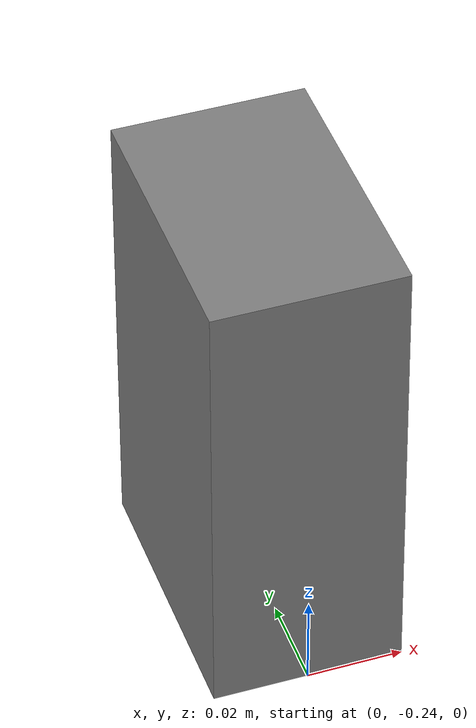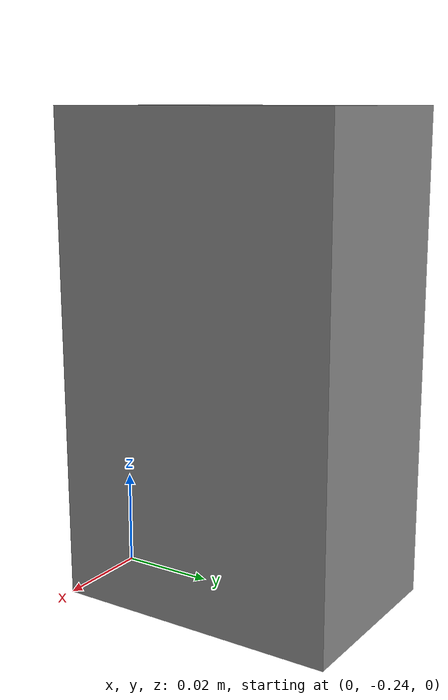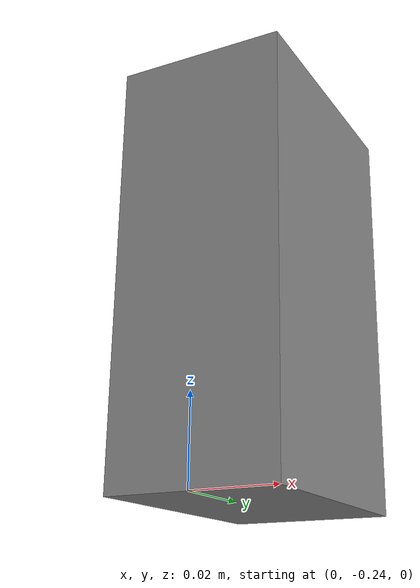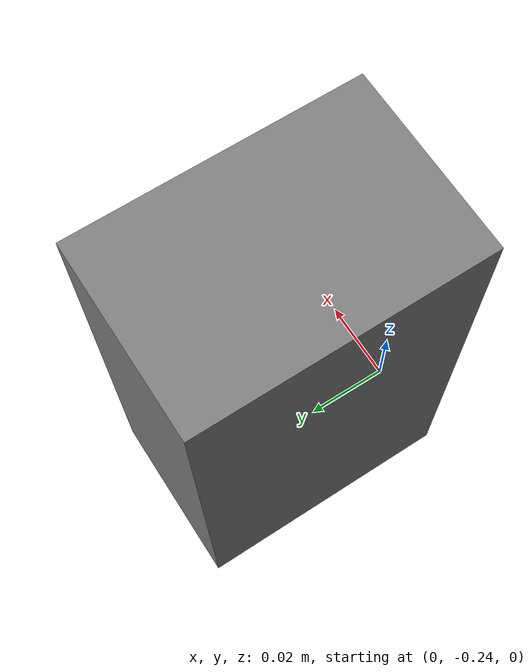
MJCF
<mujoco>
	<worldbody>
		<body name="box" pos="0.0 -0.21 0.05" axisangle="0.0 0.0 1.0 0.0">
			<geom type="box" size="0.02 0.03 0.05"/>
			<!-- Comment out to fix the object -->
		</body>

	</worldbody>

</mujoco>
